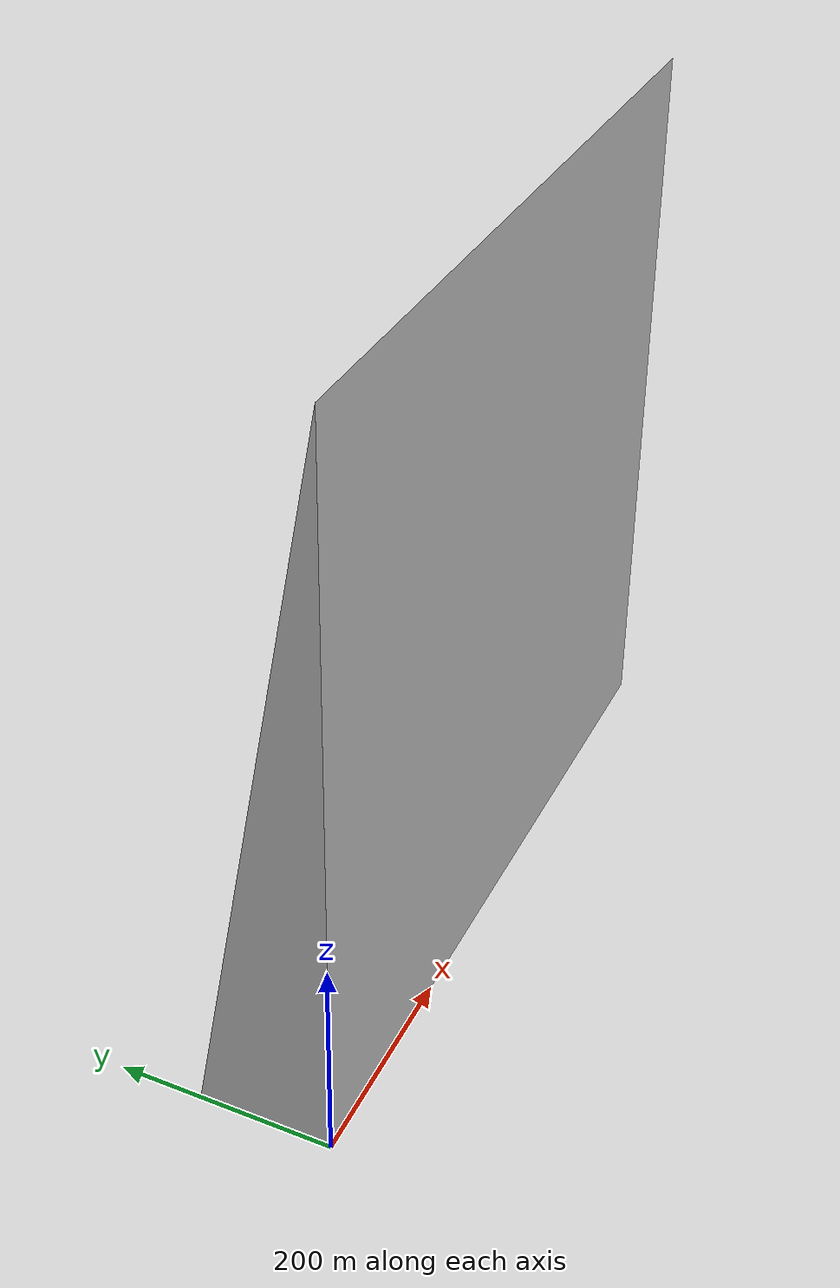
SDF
<?xml version='1.0'?>
<sdf version='1.5'>
  <model name="Tilt1">
    <pose>0 0 0.5 0 0 0</pose>
    <static>true</static>
    <link name="link">
      <collision name="collision">
        <geometry>
          <mesh>
            <uri>src/peter_robot/gazebo_model/tilts/meshes/tillt1.stl</uri>
            <scale>1 1 1</scale>
          </mesh>
        </geometry>
      </collision>

      <visual name="visual">
        <geometry>
          <mesh>
            <uri>src/peter_robot/gazebo_model/tilts/meshes/tillt1.stl</uri>
            <scale>1 1 1</scale>
          </mesh>
        </geometry>
      </visual>
    </link>
  </model>
</sdf>
